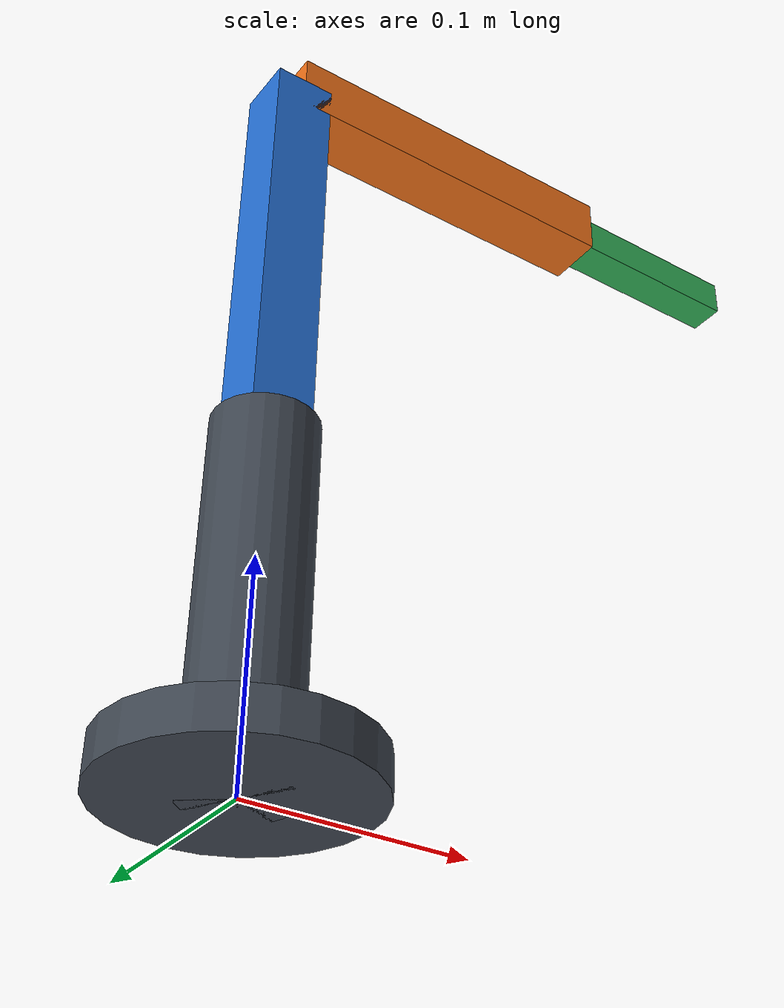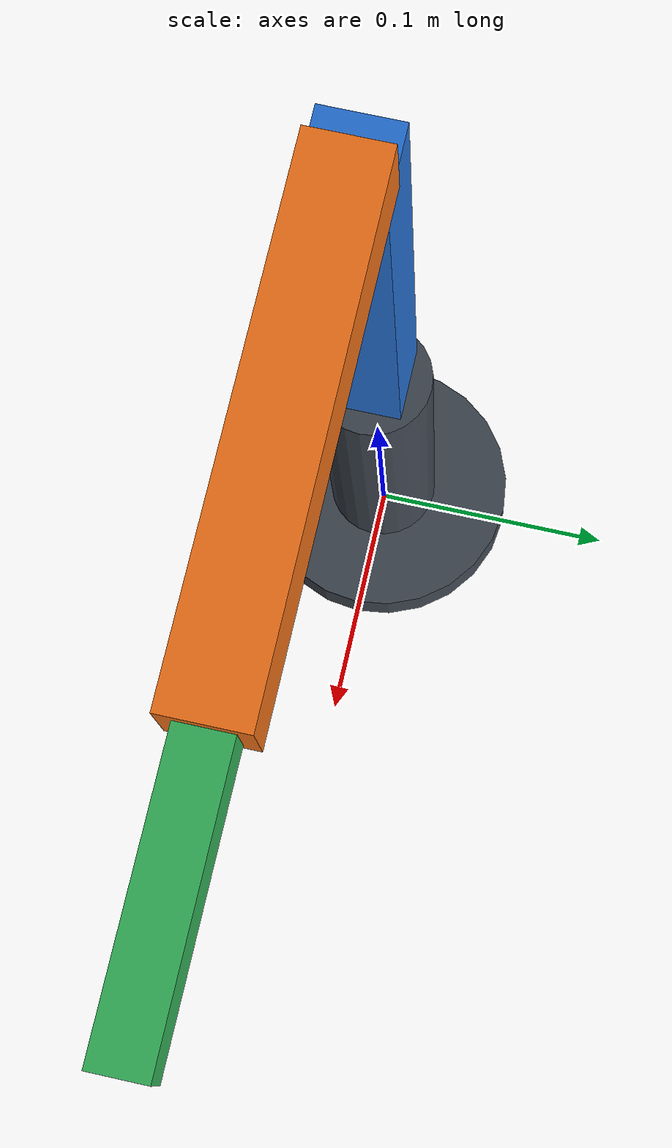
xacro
<?xml version="1.0"?>
<robot name="custom_4dof" xmlns:xacro="http://www.ros.org/wiki/xacro">
  <xacro:include filename="materials.xacro"/>
  <!-- All lengths in metres. Visualization-only: no inertial data available. -->
  <xacro:property name="j1_to_j2" value="0.161"/>
  <xacro:property name="j2_to_j3" value="0.191"/>
  <xacro:property name="j3_to_j4" value="0.172"/>
  <!-- PROVISIONAL drawing estimates, NOT calibrated TCP dimensions. -->
  <xacro:property name="tcp_x_provisional" value="0.092"/>
  <xacro:property name="tcp_z_provisional" value="0.020"/>
  <!-- Illustrative geometry dimensions only; not measured hardware envelopes. -->
  <xacro:property name="base_radius" value="0.055"/>
  <xacro:property name="base_height" value="0.018"/>
  <xacro:property name="column_radius" value="0.023"/>
  <xacro:property name="arm_width" value="0.028"/>
  <xacro:property name="wrist_width" value="0.018"/>

  <xacro:macro name="box_link" params="name size xyz material">
    <link name="${name}">
      <visual><origin xyz="${xyz}"/><geometry><box size="${size}"/></geometry><material name="${material}"/></visual>
      <collision><origin xyz="${xyz}"/><geometry><box size="${size}"/></geometry></collision>
    </link>
  </xacro:macro>
  <xacro:macro name="cylinder_link" params="name radius length z material">
    <link name="${name}">
      <visual><origin xyz="0 0 ${z}"/><geometry><cylinder radius="${radius}" length="${length}"/></geometry><material name="${material}"/></visual>
      <collision><origin xyz="0 0 ${z}"/><geometry><cylinder radius="${radius}" length="${length}"/></geometry></collision>
    </link>
  </xacro:macro>
  <xacro:cylinder_link name="base_link" radius="${base_radius}" length="${base_height}" z="${base_height/2}" material="base_gray"/>
  <xacro:cylinder_link name="link1" radius="${column_radius}" length="${j1_to_j2}" z="${j1_to_j2/2}" material="base_gray"/>
  <xacro:box_link name="link2" size="${arm_width} ${arm_width} ${j2_to_j3}" xyz="0 0 ${j2_to_j3/2}" material="arm_blue"/>
  <xacro:box_link name="link3" size="${j3_to_j4} ${arm_width} ${arm_width}" xyz="${j3_to_j4/2} 0 0" material="elbow_orange"/>
  <xacro:box_link name="link4" size="${tcp_x_provisional} ${wrist_width} ${wrist_width}" xyz="${tcp_x_provisional/2} 0 0" material="wrist_green"/>
  <link name="tool0"/>
  <link name="tcp"/>

  <joint name="joint1" type="continuous">
    <parent link="base_link"/><child link="link1"/>
    <origin xyz="0 0 0" rpy="0 0 0"/><axis xyz="0 0 1"/>
  </joint>
  <joint name="joint2" type="continuous">
    <parent link="link1"/><child link="link2"/>
    <origin xyz="0 0 ${j1_to_j2}" rpy="0 0 0"/><axis xyz="0 -1 0"/>
  </joint>
  <joint name="joint3" type="continuous">
    <parent link="link2"/><child link="link3"/>
    <origin xyz="0 0 ${j2_to_j3}" rpy="0 0 0"/><axis xyz="0 -1 0"/>
  </joint>
  <joint name="joint4" type="continuous">
    <parent link="link3"/><child link="link4"/>
    <origin xyz="${j3_to_j4} 0 0" rpy="0 0 0"/><axis xyz="0 -1 0"/>
  </joint>
  <joint name="link4_to_tool0" type="fixed">
    <parent link="link4"/><child link="tool0"/><origin xyz="0 0 0" rpy="0 0 0"/>
  </joint>
  <joint name="tool0_to_tcp" type="fixed">
    <parent link="tool0"/><child link="tcp"/>
    <origin xyz="${tcp_x_provisional} 0 ${tcp_z_provisional}" rpy="0 0 0"/>
  </joint>
</robot>

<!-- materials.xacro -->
<robot xmlns:xacro="http://www.ros.org/wiki/xacro">
  <material name="base_gray"><color rgba="0.25 0.28 0.32 1"/></material>
  <material name="arm_blue"><color rgba="0.15 0.45 0.85 1"/></material>
  <material name="elbow_orange"><color rgba="0.95 0.45 0.10 1"/></material>
  <material name="wrist_green"><color rgba="0.2 0.7 0.35 1"/></material>
</robot>
